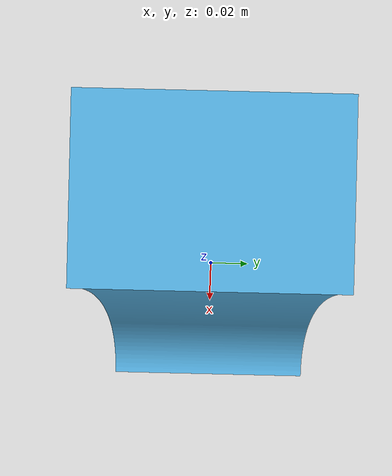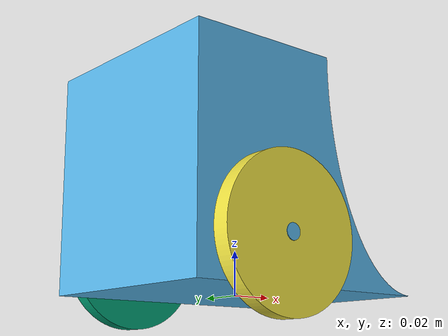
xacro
<?xml version="1.0"?>
<robot name="cybersumo" xmlns:xacro="http://ros.org/wiki/xacro">

    <!-- Includes -->
    <xacro:include filename="$(find description)/urdf/constants.xacro"/>

    <link name="base_link"/>

    <!-- Body -->
    <link name="body_link">
        <!-- Appearance -->
        <visual>
            <!-- Set reference frame -->
            <origin xyz="0 0 0" rpy="0 0 0"/>
            <!-- Define shape -->
            <geometry>
                <mesh filename="package://description/urdf/meshes/sample_body.dae"/>
            </geometry>
        </visual>

        <!-- Physcial properties -->
        <collision>
            <origin xyz="0 0 0" rpy="0 0 0"/>
            <geometry>
                <mesh filename="package://description/urdf/meshes/sample_body.dae"/>
            </geometry>
        </collision>

    </link>

    <joint name="body_joint" type="fixed">
        <parent link="base_link"/>
        <child link="body_link"/>
        <origin xyz="0 0 0" rpy="0 0 0"/>
    </joint>

    <!-- Wheels -->
    <xacro:macro name="Wheel" params="lr">
        <link name="${lr}_wheel_link">
            <visual>
                <origin xyz="0 0 0" rpy="0 0 0"/>
                <geometry>
                    <mesh filename="package://description/urdf/meshes/sample_wheels.dae"/>
                </geometry>
            </visual>

            <collision>
                <origin xyz="0 0 0" rpy="0 0 0"/>
                <geometry>
                    <mesh filename="package://description/urdf/meshes/sample_wheels.dae"/>
                </geometry>
            </collision>

        </link>

        <joint name="${lr}_wheel_link" type="continuous">
            <parent link="body_link"/>
            <child link="${lr}_wheel_link"/>
            <origin xyz="${wheel_x} ${left_wheel if lr == 'left' else right_wheel} ${wheel_z}"/>
            <axis xyz="0 1 0"/>
        </joint>
    </xacro:macro>

    <xacro:Wheel lr="left"/>
    <xacro:Wheel lr="right"/>
</robot>

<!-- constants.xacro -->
<robot name="constants" xmlns:xacro="http://ros.org/wiki/xacro">

    <!-- Distances from Body to Wheels -->
    <xacro:property name="right_wheel" value="-0.054"/>
    <xacro:property name="left_wheel" value="0.054"/>
    <xacro:property name="wheel_x" value="-0.019"/>
    <xacro:property name="wheel_z" value="0.02"/>

</robot>
